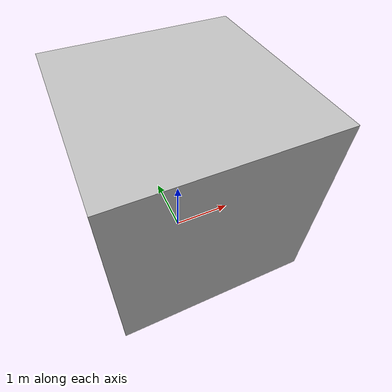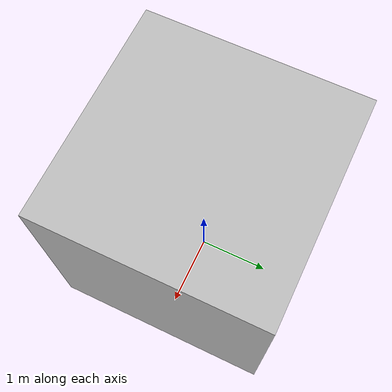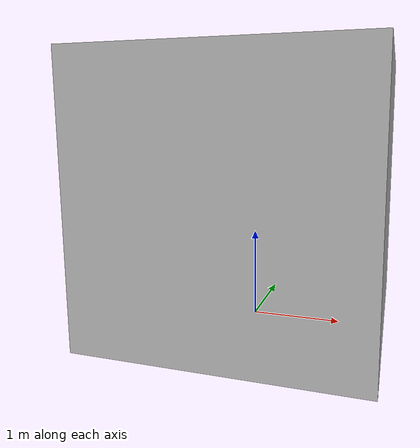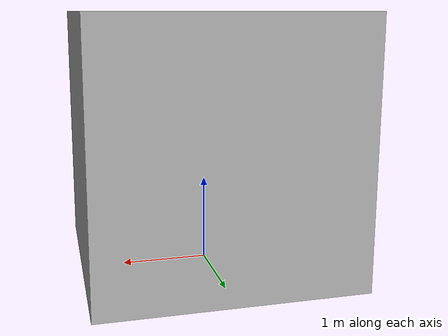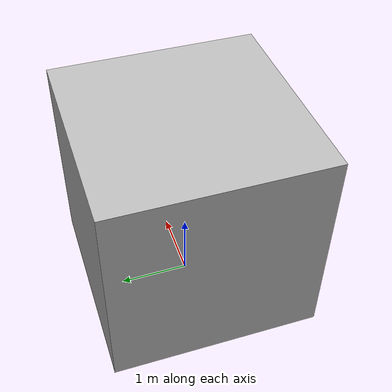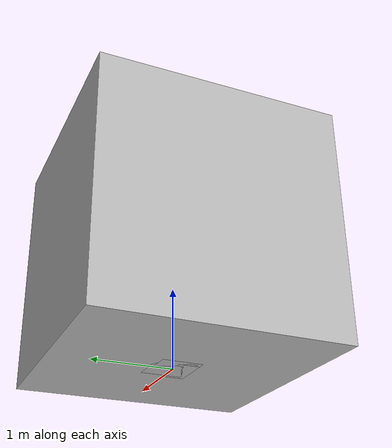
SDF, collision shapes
<?xml version="1.0"?>
<sdf version="1.8">
  <model name="ground_station">
    <static>true</static>

    <!-- Include the tent model -->
    <include>
      <name>tent</name>
      <uri>model://ground_station/tent</uri>
      <pose>0 0 0 0 0 0</pose>
    </include>

    <!-- Include the first foldable table -->
    <include>
      <name>table_a</name>
      <uri>model://ground_station/foldable_table</uri>
      <pose>0.5 0.9 0.0 0.0 0.0 0.0</pose>
    </include>

    <!-- Include the second foldable table -->
    <include>
      <name>table_b</name>
      <uri>model://ground_station/foldable_table</uri>
      <pose>1.0 -0.5 0.0 0.0 0.0 1.57</pose>
    </include>

    <!-- Include the first foldable chair -->
    <include>
      <name>chair_a</name>
      <uri>model://ground_station/foldable_chair</uri>
      <pose>-0.0 0 0 0 0 1.57</pose>
    </include>

    <!-- Include the second foldable chair -->
    <include>
      <name>chair_b</name>
      <uri>model://ground_station/foldable_chair</uri>
      <pose>0 0 0 0 0 -1.57</pose>
    </include>

    <!-- Include the third foldable chair -->
    <include>
      <name>chair_c</name>
      <uri>model://ground_station/foldable_chair</uri>
      <pose>0 0 0 0 0 0</pose>
    </include>
  </model>
</sdf>

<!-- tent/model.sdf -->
<sdf version="1.6">
  <model name="tent">
    <static>true</static>
    <link name="base_link">
      <visual name="visual">
        <geometry>
           <mesh>
            <uri>mesh/tent.dae</uri>
          </mesh>
        </geometry>
      </visual>
      <collision name="collision">
        <pose>0 0 1.5 0 0 0</pose>
        <geometry>
          <box>
            <size>3.0 3.0 3.0</size>
          </box>
        </geometry>
      </collision>
    </link>
  </model>
</sdf>

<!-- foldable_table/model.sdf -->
<sdf version="1.6">
  <model name="foldable_table">
    <static>true</static>
    <link name="base_link">
      <visual name="visual">
        <geometry>
          <mesh>
            <uri>mesh/foldable_table.dae</uri>

          </mesh>
        </geometry>
      </visual>
      <collision name="collision">
        <pose>0 0 0.35 0 0 0</pose>
        <geometry>
          <box>
            <size>1.82 0.74 0.67</size>
          </box>
        </geometry>
      </collision>
    </link>
  </model>
</sdf>

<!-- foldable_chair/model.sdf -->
<sdf version="1.6">
  <model name="foldable_chair">
    <static>true</static>
    <link name="base_link">
      <visual name="visual">
        <geometry>
          <mesh>
            <scale>0.05 0.05 0.05</scale>
            <uri>mesh/foldable_chair.dae</uri>
          </mesh>
        </geometry>
      </visual>
      <collision name="collision">
        <pose>0 0.05 0.4 0 0 0</pose>
        <geometry>
          <box>
            <size>0.5 0.5 0.8</size>
          </box>
        </geometry>
      </collision>
    </link>
  </model>
</sdf>
